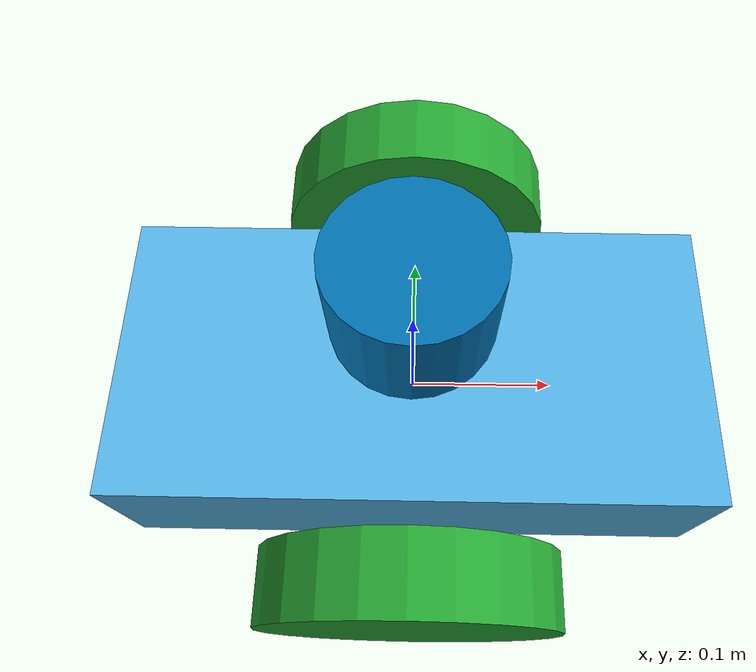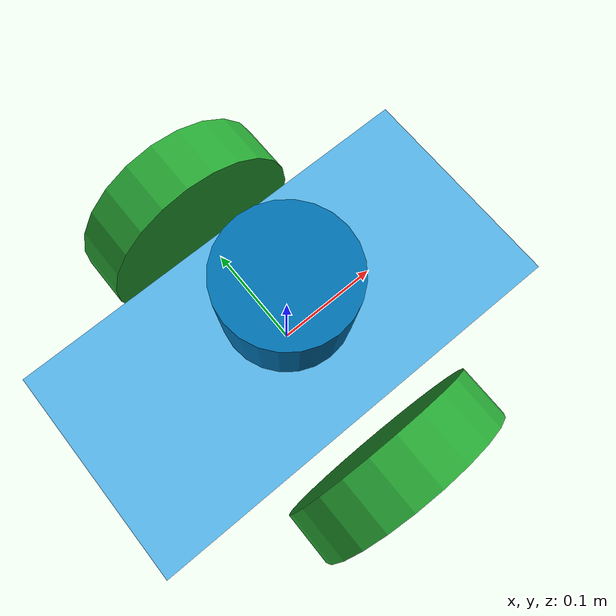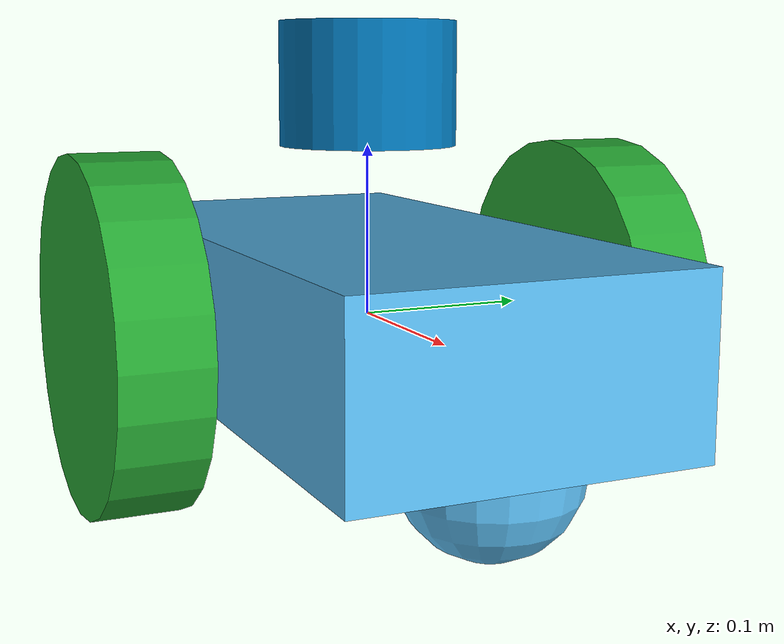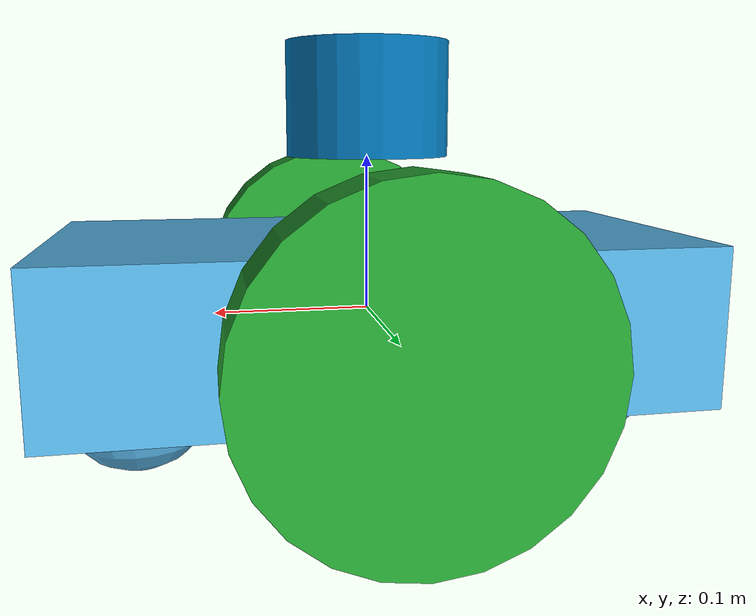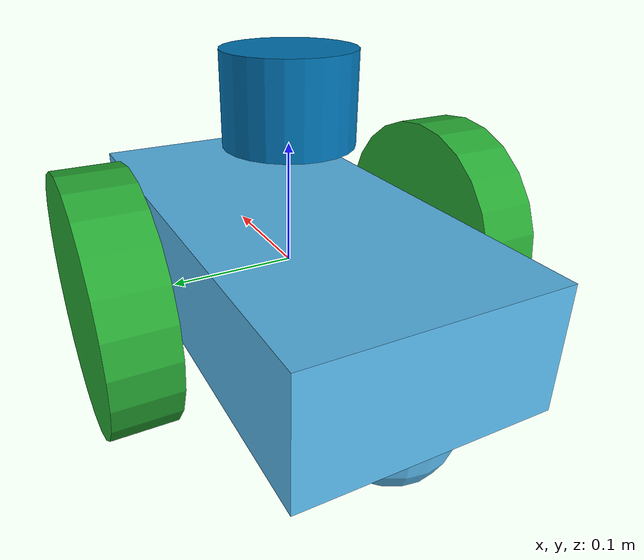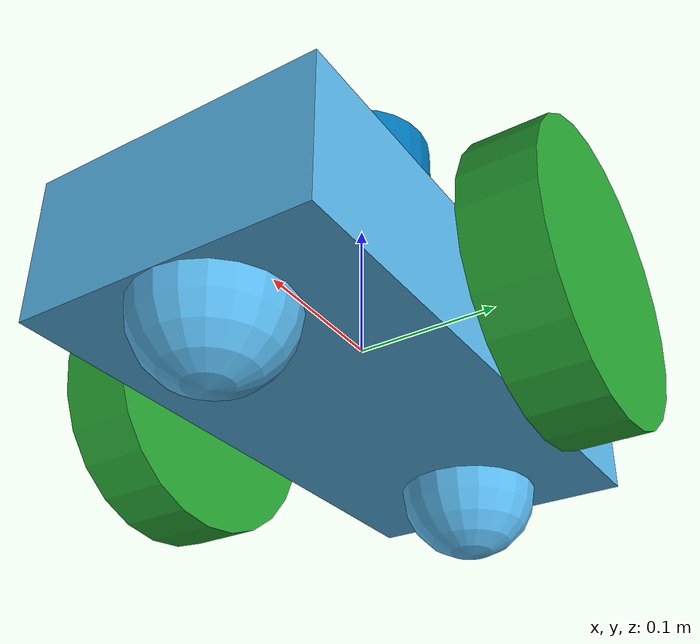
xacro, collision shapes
<?xml version='1.0'?>

<robot name="lidar_robot" xmlns:xacro="http://www.ros.org/wiki/xacro">
  <xacro:arg name="gpu" default="false"/>
  <xacro:property name="gpu" value="$(arg gpu)" />
  <xacro:include filename="$(find lidar_bot)/urdf/lidar_robot.gazebo" />

  <gazebo reference="left_wheel">
    <material>Gazebo/Green</material>
  </gazebo>

  <gazebo reference="right_wheel">
    <material>Gazebo/Green</material>
  </gazebo>

  <link name="robot_footprint"></link>

  <joint name="robot_footprint_joint" type="fixed">
    <origin xyz="0 0 0" rpy="0 0 0" />
    <parent link="robot_footprint"/>
    <child link="base_link" />
  </joint>

  <link name='base_link'>

    <inertial>
      <mass value="15.0"/>
      <origin xyz="0.0 0 0" rpy=" 0 0 0"/>
      <inertia
          ixx="0.1" ixy="0" ixz="0"
          iyy="0.1" iyz="0"
          izz="0.1"
      />
    </inertial>

    <collision name='collision'>
      <origin xyz="0 0 0" rpy=" 0 0 0"/>
      <geometry>
        <box size=".4 .2 .1"/>
      </geometry>
    </collision>

    <visual name='chassis_visual'>
      <origin xyz="0 0 0" rpy=" 0 0 0"/>
      <geometry>
        <box size=".4 .2 .1"/>
      </geometry>
    </visual>

    <collision name='back_caster_collision'>
      <origin xyz="-0.15 0 -0.05" rpy=" 0 0 0"/>
      <geometry>
        <sphere radius="0.0499"/>
      </geometry>
    </collision>

    <visual name='back_caster_visual'>
      <origin xyz="-0.15 0 -0.05" rpy=" 0 0 0"/>
      <geometry>
        <sphere radius="0.05"/>
      </geometry>
    </visual>

    <collision name='front_caster_collision'>
      <origin xyz="0.15 0 -0.05" rpy=" 0 0 0"/>
      <geometry>
        <sphere radius="0.0499"/>
      </geometry>
    </collision>

    <visual name='front_caster_visual'>
      <origin xyz="0.15 0 -0.05" rpy=" 0 0 0"/>
      <geometry>
        <sphere radius="0.05"/>
      </geometry>
    </visual>

  </link>

  <!-- Left wheel link -->
  <link name='left_wheel'>
    <inertial>
      <mass value="5.0"/>
      <origin xyz="0.0 0 0" rpy=" 0 0 0"/>
      <inertia
          ixx="0.1" ixy="0" ixz="0"
          iyy="0.1" iyz="0"
          izz="0.1"
      />
    </inertial>

    <collision name='left_wheel_collision'>
      <origin xyz="0 0 0" rpy=" 0 1.5707 1.5707"/>
      <geometry>
        <cylinder radius="0.1" length="0.05"/>
      </geometry>
    </collision>

    <visual name='left_wheel_visual'>
      <origin xyz="0 0 0" rpy=" 0 1.5707 1.5707"/>
      <geometry>
        <cylinder radius="0.1" length="0.05"/>
      </geometry>
    </visual>
  </link>

  <!-- Left wheel joint -->
  <joint name="left_wheel_hinge" type="continuous">
    <origin xyz="0 0.15 0" rpy="0 0 0"/>
    <child link="left_wheel"/>
    <parent link="base_link"/>
    <axis xyz="0 1 0" rpy="0 0 0"/>
    <limit effort="10000" velocity="1000"/>
    <dynamics damping="1.0" friction="1.0"/>
  </joint>

  <!-- Right wheel -->
  <link name='right_wheel'>
    <inertial>
      <mass value="5.0"/>
      <origin xyz="0.0 0 0" rpy=" 0 0 0"/>
      <inertia
          ixx="0.1" ixy="0" ixz="0"
          iyy="0.1" iyz="0"
          izz="0.1"
      />
    </inertial>

    <collision name='right_wheel_collision'>
      <origin xyz="0 0 0" rpy=" 0 1.5707 1.5707"/>
      <geometry>
        <cylinder radius="0.1" length="0.05"/>
      </geometry>
    </collision>

    <visual name='right_wheel_visual'>
      <origin xyz="0 0 0" rpy=" 0 1.5707 1.5707"/>
      <geometry>
        <cylinder radius="0.1" length="0.05"/>
      </geometry>
    </visual>
  </link>

  <!-- Right wheel joint -->
  <joint name="right_wheel_hinge" type="continuous">
    <origin xyz="0 -0.15 0" rpy="0 0 0"/>
    <child link="right_wheel"/>
    <parent link="base_link"/>
    <axis xyz="0 1 0" rpy="0 0 0"/>
    <limit effort="10000" velocity="1000"/>
    <dynamics damping="1.0" friction="1.0"/>
  </joint>

  <!-- Add the velodyne model -->
  <xacro:include filename="$(find velodyne_description)/urdf/VLP-16.urdf.xacro"/>
  <VLP-16 parent="base_link" name="velodyne" topic="/velodyne_points" hz="10" samples="440" gpu="${gpu}">
    <origin xyz="0 0 0.1" rpy="0 0 0" />
  </VLP-16>

</robot>

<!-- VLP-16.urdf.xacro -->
<robot xmlns:xacro="http://www.ros.org/wiki/xacro" name="VLP-16">
  <xacro:property name="M_PI" value="3.1415926535897931" />
  <xacro:macro name="VLP-16" params="*origin is_sim:=true parent:=base_link name:=velodyne tf_prefix:='' topic:=/velodyne_points organize_cloud:=false hz:=10 lasers:=16 samples:=1875 collision_range:=0.3 min_range:=0.0 max_range:=100.0 noise:=0.008 min_angle:=-${M_PI} max_angle:=${M_PI} gpu:=false">

    <joint name="${name}_base_mount_joint" type="fixed">
      <xacro:insert_block name="origin" />
      <parent link="${parent}"/>
      <child link="${name}_base_link"/>
    </joint>

    <link name="${name}_base_link">
      <inertial>
        <mass value="0.83"/>
        <origin xyz="0 0 0.03585"/>
        <inertia ixx="${(0.83 * (3.0*0.0516*0.0516 + 0.0717*0.0717)) / 12.0}" ixy="0" ixz="0"
          iyy="${(0.83 * (3.0*0.0516*0.0516 + 0.0717*0.0717)) / 12.0}" iyz="0"
          izz="${0.5 * 0.83 * (0.0516*0.0516)}"/>
      </inertial>
      <visual>
        <geometry>
          <mesh filename="package://velodyne_description/meshes/VLP16_base_1.dae" />
        </geometry>
      </visual>
      <visual>
        <geometry>
          <mesh filename="package://velodyne_description/meshes/VLP16_base_2.dae" />
        </geometry>
      </visual>
      <collision>
        <origin rpy="0 0 0" xyz="0 0 0.03585"/>
        <geometry>
          <cylinder radius="0.0516" length="0.0717"/>
        </geometry>
      </collision>
    </link>

    <joint name="${name}_base_scan_joint" type="fixed" >
      <origin xyz="0 0 0.0377" rpy="0 0 0" />
      <parent link="${name}_base_link" />
      <child link="${name}"/>
    </joint>

    <link name="${name}">
      <inertial>
        <mass value="0.01"/>
        <origin xyz="0 0 0"/>
        <inertia ixx="1e-7" ixy="0" ixz="0" iyy="1e-7" iyz="0" izz="1e-7"/>
      </inertial>
      <visual>
        <origin xyz="0 0 -0.0377" />
        <geometry>
          <mesh filename="package://velodyne_description/meshes/VLP16_scan.dae" />
        </geometry>
      </visual>
      <collision>
        <geometry>
          <sphere radius="0"/>
        </geometry>
      </collision>
    </link>

    <!-- Gazebo requires the velodyne_gazebo_plugins package -->
    <xacro:if value="${is_sim}">
        <gazebo reference="${name}">
            <xacro:if value="${gpu}">
                <sensor type="gpu_ray" name="${name}-VLP16">
                <pose>0 0 0 0 0 0</pose>
                <visualize>false</visualize>
                <update_rate>${hz}</update_rate>
                <ray>
                    <scan>
                    <horizontal>
                        <samples>${samples}</samples>
                        <resolution>1</resolution>
                        <min_angle>${min_angle}</min_angle>
                        <max_angle>${max_angle}</max_angle>
                    </horizontal>
                    <vertical>
                        <samples>${lasers}</samples>
                        <resolution>1</resolution>
                        <min_angle>-${15.0*M_PI/180.0}</min_angle>
                        <max_angle> ${15.0*M_PI/180.0}</max_angle>
                    </vertical>
                    </scan>
                    <range>
                    <min>${collision_range}</min>
                    <max>${max_range+1}</max>
                    <resolution>0.001</resolution>
                    </range>
                    <noise>
                    <type>gaussian</type>
                    <mean>0.0</mean>
                    <stddev>0.0</stddev>
                    </noise>
                </ray>
                <plugin name="gazebo_ros_laser_controller" filename="libgazebo_ros_velodyne_laser.so">
                    <ros>
                    <namespace>/${name}</namespace>
                    <remapping>~/out:=${topic}</remapping>
                    </ros>
                    <tf_prefix>${tf_prefix}</tf_prefix>
                    <frame_name>${name}</frame_name>
                    <organize_cloud>${organize_cloud}</organize_cloud>
                    <min_range>${min_range}</min_range>
                    <max_range>${max_range}</max_range>
                    <gaussian_noise>${noise}</gaussian_noise>
                </plugin>
                </sensor>
            </xacro:if>
            <xacro:unless value="${gpu}">
                <sensor type="ray" name="${name}-VLP16">
                <pose>0 0 0 0 0 0</pose>
                <visualize>false</visualize>
                <update_rate>${hz}</update_rate>
                <ray>
                    <scan>
                    <horizontal>
                        <samples>${samples}</samples>
                        <resolution>1</resolution>
                        <min_angle>${min_angle}</min_angle>
                        <max_angle>${max_angle}</max_angle>
                    </horizontal>
                    <vertical>
                        <samples>${lasers}</samples>
                        <resolution>1</resolution>
                        <min_angle>-${15.0*M_PI/180.0}</min_angle>
                        <max_angle> ${15.0*M_PI/180.0}</max_angle>
                    </vertical>
                    </scan>
                    <range>
                    <min>${collision_range}</min>
                    <max>${max_range+1}</max>
                    <resolution>0.001</resolution>
                    </range>
                    <noise>
                    <type>gaussian</type>
                    <mean>0.0</mean>
                    <stddev>0.0</stddev>
                    </noise>
                </ray>
                <plugin name="gazebo_ros_laser_controller" filename="libgazebo_ros_velodyne_laser.so">
                    <ros>
                    <namespace>/${name}</namespace>
                    <remapping>~/out:=${topic}</remapping>
                    </ros>
                    <tf_prefix>${tf_prefix}</tf_prefix>
                    <frame_name>${name}</frame_name>
                    <organize_cloud>${organize_cloud}</organize_cloud>
                    <min_range>${min_range}</min_range>
                    <max_range>${max_range}</max_range>
                    <gaussian_noise>${noise}</gaussian_noise>
                </plugin>
                </sensor>
            </xacro:unless>
        </gazebo>
    </xacro:if>

  </xacro:macro>
</robot>
